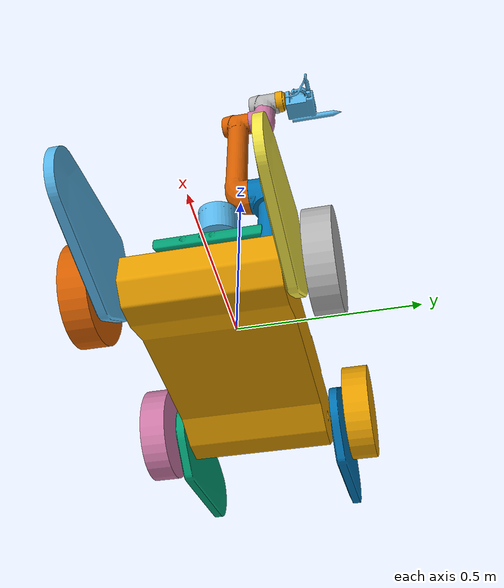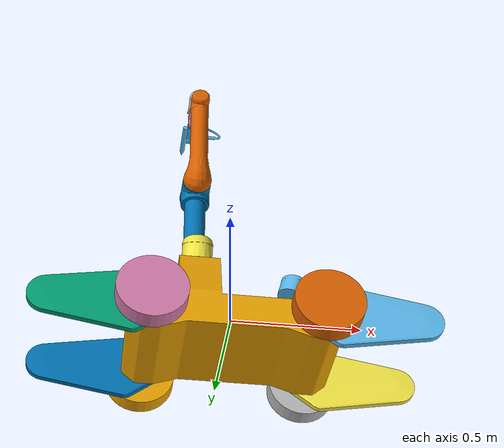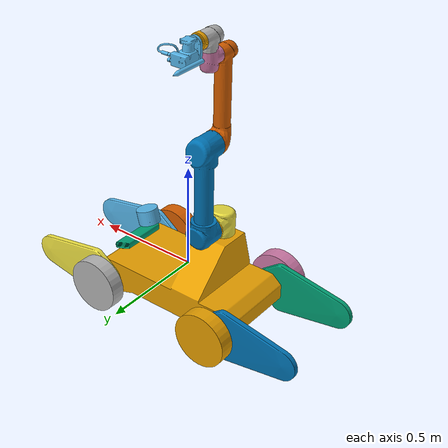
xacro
<!-- ROSI URDF MODEL -->
<robot xmlns:xacro="http://www.ros.org/wiki/xacro" name="rosi">

	<!-- Misc parameters -->
	<xacro:property name="mesh_folder" value="package://rosi_defy/urdf/meshes" />
	<xacro:property name="ur5_link_mesh" value="${mesh_folder}/ur5_link_" />

	<!-- UR5 parameters -->
	<xacro:property name="ur5_joints_effort" value="50" />
	<xacro:property name="ur5_joints_velocity" value="1.57" />
	<xacro:property name="ur5_joints_lower" value="-6.28" />
	<xacro:property name="ur5_joints_upper" value="6.28" />

	<!-- UR5 xacro macros -->
	<xacro:macro name="ur5_joints_config" params="effort velocity lower upper">
		<limit effort="${effort}" velocity="${velocity}" lower="${lower}" upper="${upper}" />
	</xacro:macro>

	<xacro:macro name="ur5_joint_def" params="num_joint num_parent num_child xyz rpy" >
		<joint name="joint_ur5_j${num_joint}" type="revolute">
			<parent link="ur5_link_${num_parent}" />
			<child link="ur5_link_${num_child}" />
			<origin xyz="${xyz}" rpy="${rpy}" />
			<xacro:ur5_joints_config effort="${ur5_joints_effort}" velocity="${ur5_joints_velocity}" lower="${ur5_joints_lower}" upper="${ur5_joints_upper}" />
			<axis xyz="0 0 1" />
		</joint>
	</xacro:macro>

	<xacro:macro name="ur5_link_def" params="link_num xyz rpy" >
		<link name="ur5_link_${link_num}">
			<visual>
				<geometry>
					<mesh filename="${ur5_link_mesh}${link_num}.stl" />
				</geometry>
				<origin xyz="${xyz}" rpy="${rpy}" />
			</visual>
		</link>
	</xacro:macro>

	<!-- wheel xacro macros -->
	<xacro:macro name="wheel_joint_def" params="wheel_num xyz rpy">
		<joint name="joint_wheel_${wheel_num}" type="continuous">
			<parent link="base_link" />
			<child link="wheel_${wheel_num}" />
			<origin xyz="${xyz}" rpy="${rpy}" />
			<axis xyz="0 0 1" />
		</joint>
	</xacro:macro>

	<xacro:macro name="wheel_link_def" params="wheel_num xyz rpy">
		<link name="wheel_${wheel_num}">
			<visual>
				<geometry>
					<mesh filename="${mesh_folder}/wheel.stl" />
				</geometry>
				<origin xyz="${xyz}" rpy="${rpy}" />
			</visual>
		</link>
	</xacro:macro>

	<!-- arms xacro macros -->
	<xacro:macro name="arms_joints_def" params="arm_num xyz rpy">
		<joint name="joint_arm_${arm_num}" type="continuous">
			<parent link="base_link" />
			<child link="arm_${arm_num}" />
			<origin xyz="${xyz}" rpy="${rpy}" />
			<axis xyz="0 0 1" />
		</joint>
	</xacro:macro>

	<xacro:macro name="arms_link_def" params="arm_num xyz rpy" >
		<link name="arm_${arm_num}">
			<visual>
				<geometry>
					<mesh filename="${mesh_folder}/arm.stl" />
				</geometry>
				<origin xyz="${xyz}" rpy="${rpy}" />
			</visual>
		</link>
	</xacro:macro>

	<!-- ============ Defining  links ===============-->

	<!-- Defining base link -->
	<link name="base_link">
		<origin xyz="0 0 0" rpy="0 0 0"/>
		<visual>
			<geometry>
				<mesh filename="${mesh_folder}/rosi_base.stl" />
			</geometry>
		</visual>
	</link>

	<!-- defining arms links -->
	<xacro:arms_link_def arm_num="1" xyz="0.1805 0 0" rpy="0 0 0" />
	<xacro:arms_link_def arm_num="2" xyz="-0.1805 0 0" rpy="0 0 3.14" />
	<xacro:arms_link_def arm_num="3" xyz="0.1805 0 0" rpy="0 0 0" />
	<xacro:arms_link_def arm_num="4" xyz="-0.1805 0 0" rpy="0 0 3.14" />

	<!-- Defining wheel links -->
	<xacro:wheel_link_def wheel_num="1" xyz="0 0 0" rpy="0 0 0" />
	<xacro:wheel_link_def wheel_num="2" xyz="0 0 0" rpy="0 0 0" />
	<xacro:wheel_link_def wheel_num="3" xyz="0 0 0" rpy="0 0 0" />
	<xacro:wheel_link_def wheel_num="4" xyz="0 0 0" rpy="0 0 0" />

	<!-- Defining sensors links -->
	<link name="velodyne">
		<visual>
			<geometry>
				<mesh filename="${mesh_folder}/velodyne.stl" />
			</geometry>
		</visual>
	</link>

	<link name="kinect">
		<visual>
			<geometry>
				<mesh filename="${mesh_folder}/kinect.stl" />
			</geometry>
			<origin xyz="-0.023 0 0" rpy="-1.57 0 1.57" />
		</visual>
	</link>

	<!-- Defining UR5 links -->
	<xacro:ur5_link_def link_num="2" xyz="0 0 0.070" rpy="0 0 1.57" />
	<xacro:ur5_link_def link_num="3" xyz="0.212 0 0.064" rpy="1.57 0 1.57" />
	<xacro:ur5_link_def link_num="4" xyz="0.187 0 -0.058" rpy="1.57 0 1.57" />
	<xacro:ur5_link_def link_num="5" xyz="0 0 0.032" rpy="1.57 0 1.57" />
	<xacro:ur5_link_def link_num="6" xyz="0 0 0.042" rpy="0 0 1.57" />
	<xacro:ur5_link_def link_num="7" xyz="0 0 0.077" rpy="1.57 0 0" />

	<!-- Defining UR5 tool link -->
	<link name="tool_pointer" >
		<visual>
			<geometry>
				<mesh filename="${mesh_folder}/tool_pointer.stl" />
			</geometry>
			<origin xyz="0 0 0" rpy="1.57 0 -1.57" />
		</visual>
	</link>

	<!-- ============ Defining JOINTS ===============-->

	<!-- Defining arms joints -->
	<xacro:arms_joints_def arm_num="1" xyz="0.3152 -0.2210 -0.0993" rpy="1.57 0 0" />
	<xacro:arms_joints_def arm_num="2" xyz="-0.3152 -0.2210 -0.0993" rpy="1.57 0 0" />
	<xacro:arms_joints_def arm_num="3" xyz="0.3152 0.2210 -0.0993" rpy="-1.57 0 0" />
	<xacro:arms_joints_def arm_num="4" xyz="-0.3152 0.2210 -0.0993" rpy="-1.57 0 0" />

	<!-- Defining wheel joints -->
	<xacro:wheel_joint_def wheel_num="1" xyz="0.3152 -0.2880 -0.0993" rpy="1.57 0 0" />
	<xacro:wheel_joint_def wheel_num="2" xyz="-0.3152 -0.2880 -0.0993" rpy="1.57 0 0" />
	<xacro:wheel_joint_def wheel_num="3" xyz="0.3152 0.2880 -0.0993" rpy="-1.57 3.14 0" />
	<xacro:wheel_joint_def wheel_num="4" xyz="-0.3152 0.2880 -0.0993" rpy="-1.57 3.14 0" />

	<!-- Defining ur5 joints -->
	<joint name="joint_ur5_j1" type="revolute">
		<parent link="base_link" />
		<child link="ur5_link_2" />
		<origin xyz="-0.138 -0.067 0.184" rpy="0 0 -1.57" />
		<xacro:ur5_joints_config effort="${ur5_joints_effort}" velocity="${ur5_joints_velocity}" lower="${ur5_joints_lower}" upper="${ur5_joints_upper}" />
		<axis xyz="0 0 1" />
	</joint>

	<xacro:ur5_joint_def num_joint="2" num_parent="2" num_child="3" xyz="-0.070 0 0.066" rpy="0 -1.57 0" />
	<xacro:ur5_joint_def num_joint="3" num_parent="3" num_child="4" xyz="0.425 0 0" rpy="0 0 0" />
	<xacro:ur5_joint_def num_joint="4" num_parent="4" num_child="5" xyz="0.392 0 0" rpy="0 0 0" />
	<xacro:ur5_joint_def num_joint="5" num_parent="5" num_child="6" xyz="0.045 0 0.039" rpy="0 1.57 0" />
	<xacro:ur5_joint_def num_joint="6" num_parent="6" num_child="7" xyz="0.014 0 0.049" rpy="0 -1.57 0" />

	<!-- Defining tool joint -->
	<joint name="joint_l7_tool" type="fixed">
		<parent link="ur5_link_7" />
		<child link="tool_pointer" />
		<origin xyz="-0.018 0.034 0.195 " rpy="0 0 3.14" />
	</joint>

	<!-- Defining sensor joints -->
	<joint name="joint_velodyne" type="fixed">
		<parent link="base_link" />
		<child link="velodyne" />
		<origin xyz="0.242 0.002 0.1655" rpy="0 0.26 0" />
	</joint>

	<joint name="joint_kinect" type="revolute">
		<parent link="base_link" />
		<child link="kinect" />
		<origin xyz="0.3 0 0.009" rpy="1.57 1.57 0" />
		<limit effort="30" velocity="0.79" lower="-0.79" upper="0.79" />
		<axis xyz="0 0 1" />
	</joint>

</robot>
